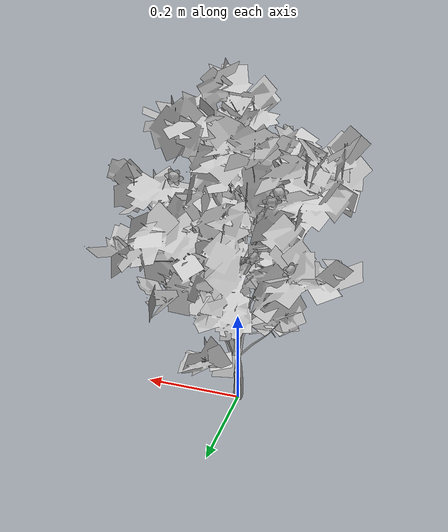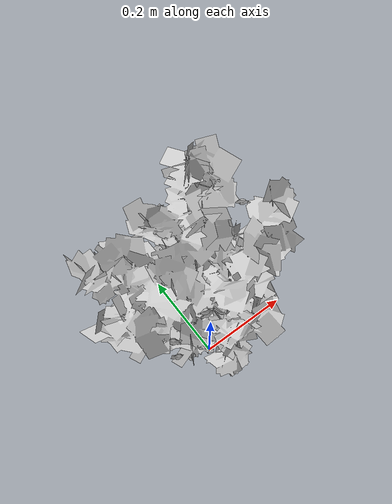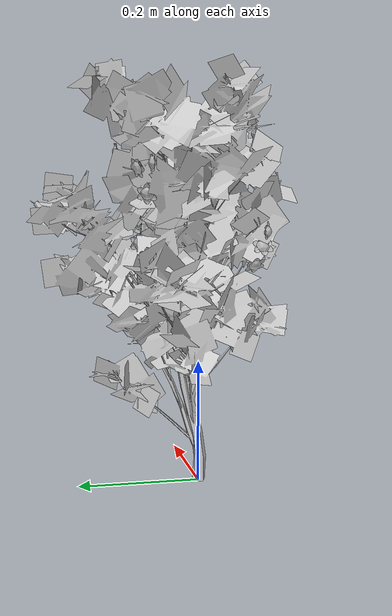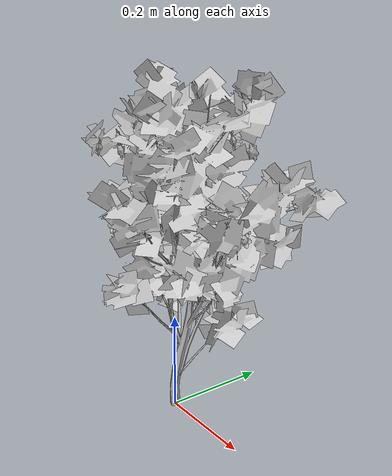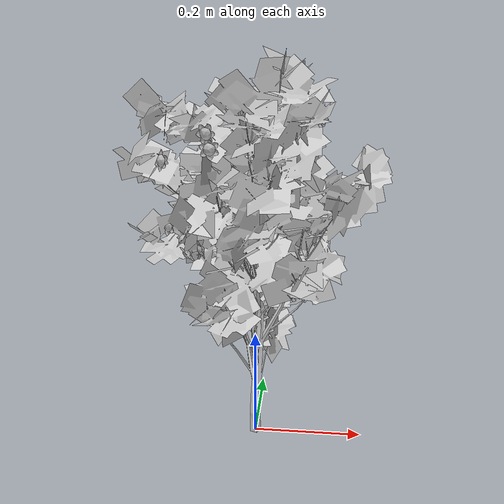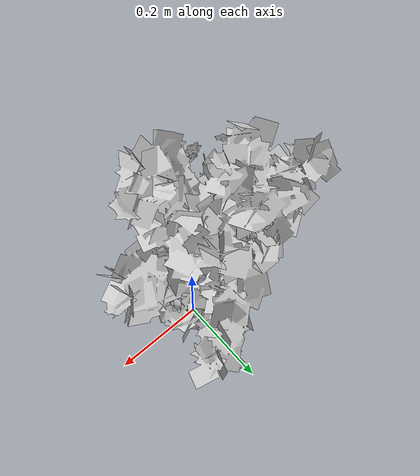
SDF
<?xml version="1.0" ?>
<sdf version="1.6">
  <model name="tree-flowers">
    <!--Skew-Seed:1963197035-->
    <static>true</static>
    <link name="link"/>
    <include>
      <uri>model://tree-mesh</uri>
      <pose>0 0 0 0 0 0</pose>
    </include>
    <joint name="tree_joint" type="fixed">
      <child>tree-mesh::link</child>
      <parent>link</parent>
    </joint>
    <include>
      <name>bramble_0</name>
      <uri>model://bramble</uri>
      <pose> 0.10290745976557072 0.08507177378211388 0.3827052633621736 0.04097620789081624 0.82755632510397 0.0</pose>
    </include>
    <joint name="flower_joint_0" type="fixed">
      <child>bramble_0::flower_link</child>
      <parent>link</parent>
    </joint>
    <include>
      <name>bramble_1</name>
      <uri>model://bramble</uri>
      <pose> -0.08091919944820529 -0.07283456916570376 0.3824584920205521 -3.555608852477816 1.238050949302822 0.0</pose>
    </include>
    <joint name="flower_joint_1" type="fixed">
      <child>bramble_1::flower_link</child>
      <parent>link</parent>
    </joint>
    <include>
      <name>bramble_2</name>
      <uri>model://bramble</uri>
      <pose> -0.11131877482222782 -0.0738903978573124 0.39613157808306837 -3.2009357342266043 2.2116852886758407 0.0</pose>
    </include>
    <joint name="flower_joint_2" type="fixed">
      <child>bramble_2::flower_link</child>
      <parent>link</parent>
    </joint>
    <include>
      <name>bramble_3</name>
      <uri>model://bramble</uri>
      <pose> -0.07183052827510533 -0.0680203450779555 0.5711541087821015 -4.384488832853825 1.0691962339580223 0.0</pose>
    </include>
    <joint name="flower_joint_3" type="fixed">
      <child>bramble_3::flower_link</child>
      <parent>link</parent>
    </joint>
    <include>
      <name>bramble_4</name>
      <uri>model://bramble</uri>
      <pose> -0.1283139925007302 0.10377317859654253 0.3853602833020295 -2.325268761314818 1.4670695714131106 0.0</pose>
    </include>
    <joint name="flower_joint_4" type="fixed">
      <child>bramble_4::flower_link</child>
      <parent>link</parent>
    </joint>
    <include>
      <name>bramble_5</name>
      <uri>model://bramble</uri>
      <pose> -0.1365135415900378 -0.07119375412950721 0.42113450440080613 -4.162869228582083 1.742563716955013 0.0</pose>
    </include>
    <joint name="flower_joint_5" type="fixed">
      <child>bramble_5::flower_link</child>
      <parent>link</parent>
    </joint>
    <include>
      <name>bramble_6</name>
      <uri>model://bramble</uri>
      <pose> 0.10639450103241249 0.051290921032439075 0.5896679542631673 -0.8918871481978212 1.1247996505646087 0.0</pose>
    </include>
    <joint name="flower_joint_6" type="fixed">
      <child>bramble_6::flower_link</child>
      <parent>link</parent>
    </joint>
    <include>
      <name>bramble_7</name>
      <uri>model://bramble</uri>
      <pose> 0.05067935953519043 0.0826087865809883 0.42812098656968145 -0.529906922231866 2.315041888211825 0.0</pose>
    </include>
    <joint name="flower_joint_7" type="fixed">
      <child>bramble_7::flower_link</child>
      <parent>link</parent>
    </joint>
    <include>
      <name>bramble_8</name>
      <uri>model://bramble</uri>
      <pose> -0.1442701891103163 -0.06794430549777351 0.5268032665416661 -4.019142568068773 1.7463019899701044 0.0</pose>
    </include>
    <joint name="flower_joint_8" type="fixed">
      <child>bramble_8::flower_link</child>
      <parent>link</parent>
    </joint>
    <include>
      <name>bramble_9</name>
      <uri>model://bramble</uri>
      <pose> -0.06004385361596477 0.10594575550374766 0.40218355257266153 -2.5401529596200576 1.3075610002261038 0.0</pose>
    </include>
    <joint name="flower_joint_9" type="fixed">
      <child>bramble_9::flower_link</child>
      <parent>link</parent>
    </joint>
    <include>
      <name>bramble_10</name>
      <uri>model://bramble</uri>
      <pose> -0.06757931164510243 0.09625581556821622 0.4799547985873578 -2.855999125148638 1.1915943591351243 0.0</pose>
    </include>
    <joint name="flower_joint_10" type="fixed">
      <child>bramble_10::flower_link</child>
      <parent>link</parent>
    </joint>
    <include>
      <name>bramble_11</name>
      <uri>model://bramble</uri>
      <pose> 0.05832269470924013 0.09267643165219189 0.330257797598111 -0.36653995663822814 1.6920454109651215 0.0</pose>
    </include>
    <joint name="flower_joint_11" type="fixed">
      <child>bramble_11::flower_link</child>
      <parent>link</parent>
    </joint>
    <include>
      <name>bramble_12</name>
      <uri>model://bramble</uri>
      <pose> -0.10289335741581107 0.0906057945638118 0.5250976445876203 -1.6889156946078372 2.266323972847211 0.0</pose>
    </include>
    <joint name="flower_joint_12" type="fixed">
      <child>bramble_12::flower_link</child>
      <parent>link</parent>
    </joint>
    <include>
      <name>bramble_13</name>
      <uri>model://bramble</uri>
      <pose> -0.06759725691792078 -0.06718812195019137 0.5459984318513803 -4.647789266243972 1.5112462650257599 0.0</pose>
    </include>
    <joint name="flower_joint_13" type="fixed">
      <child>bramble_13::flower_link</child>
      <parent>link</parent>
    </joint>
    <include>
      <name>bramble_14</name>
      <uri>model://bramble</uri>
      <pose> -0.09528718368772197 0.11334563644990525 0.5192633403201136 -2.1366661315607445 0.801114107206077 0.0</pose>
    </include>
    <joint name="flower_joint_14" type="fixed">
      <child>bramble_14::flower_link</child>
      <parent>link</parent>
    </joint>
    <include>
      <name>bramble_15</name>
      <uri>model://bramble</uri>
      <pose> -0.10713816531001275 -0.06256954677872996 0.37262275480429885 -3.3787260320282004 0.8042177415911196 0.0</pose>
    </include>
    <joint name="flower_joint_15" type="fixed">
      <child>bramble_15::flower_link</child>
      <parent>link</parent>
    </joint>
    <include>
      <name>bramble_16</name>
      <uri>model://bramble</uri>
      <pose> 0.07725152899633364 0.12100948727230144 0.5445914171989992 -1.6694783719697819 0.9020098558508365 0.0</pose>
    </include>
    <joint name="flower_joint_16" type="fixed">
      <child>bramble_16::flower_link</child>
      <parent>link</parent>
    </joint>
  </model>
</sdf>

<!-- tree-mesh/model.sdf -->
<sdf version="1.6">
  <model name="tree-mesh">
    <static>true</static>
    <link name="link">

      <collision name="collision">
        <geometry>
          <mesh>
            <uri>model://tree-mesh/meshes/new_tree.dae</uri>
            <scale>0.0625 0.0625 0.0625</scale>
          </mesh>
        </geometry>
      </collision>

      <!-- simplified collision for sake of speed since leaves shouldn't be blocking anyway -->

      <visual name="leaves">
        <geometry>
          <mesh>
            <uri>model://tree-mesh/meshes/leaves.dae</uri>
            <scale>0.0325 0.0325 0.0325</scale>
          </mesh>
        </geometry>
        <material>
          <script>
            <uri>model://tree-mesh/materials/scripts/</uri>
            <uri>model://tree-mesh/materials/textures/</uri>
            <name>NewTree/Branch</name>
          </script>
        </material>
      </visual>
      <visual name="bark">
        <geometry>
          <mesh>
            <uri>model://tree-mesh/meshes/bark.dae</uri>
            <scale>0.0325 0.0325 0.0325</scale>
          </mesh>
        </geometry>
        <material>
          <script>
            <uri>model://tree-mesh/materials/scripts/</uri>
            <uri>model://tree-mesh/materials/textures/</uri>
            <name>NewTree/Bark</name>
          </script>
        </material>
      </visual>
    </link>
  </model>
</sdf>

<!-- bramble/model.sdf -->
<sdf version="1.6">
  <model name="bramble">
    <static>true</static>
    <link name="flower_link">
      <collision name="body_collision">
        <geometry>
          <mesh>
            <uri>model://bramble/meshes/bramble.dae</uri>
            <scale>0.2 0.2 0.2</scale>
          </mesh>
        </geometry>
      </collision>
      <visual name="petals">
        <geometry>
          <mesh>
            <uri>model://bramble/meshes/bramble.dae</uri>
            <scale>0.2 0.2 0.2</scale>
            <submesh>
              <name>petal</name>
            </submesh>
          </mesh>
        </geometry>
        <material>
          <script>
            <uri>model://bramble/materials/scripts/</uri>
            <uri>model://bramble/materials/textures/</uri>
            <name>Bramble/Petal</name>
          </script>
        </material>
      </visual>
      <visual name="carpel">
        <geometry>
          <mesh>
            <uri>model://bramble/meshes/bramble.dae</uri>
            <scale>0.2 0.2 0.2</scale>
            <submesh>
              <name>carpel</name>
            </submesh>
          </mesh>
        </geometry>
        <material>
          <script>
            <uri>model://bramble/materials/scripts/</uri>
            <uri>model://bramble/materials/textures/</uri>
            <name>Bramble/Carpel</name>
          </script>
        </material>
      </visual>
      <visual name="stamen">
        <geometry>
          <mesh>
            <uri>model://bramble/meshes/bramble.dae</uri>
            <scale>0.2 0.2 0.2</scale>
            <submesh>
              <name>stamen</name>
            </submesh>
          </mesh>
        </geometry>
        <material>
          <script>
            <uri>model://bramble/materials/scripts/</uri>
            <uri>model://bramble/materials/textures/</uri>
            <name>Bramble/Stamen</name>
          </script>
        </material>
      </visual>
    </link>
  </model>
</sdf>
